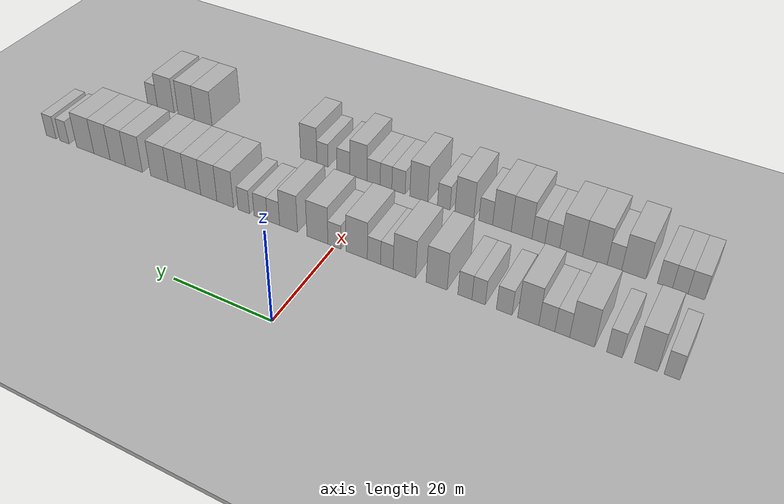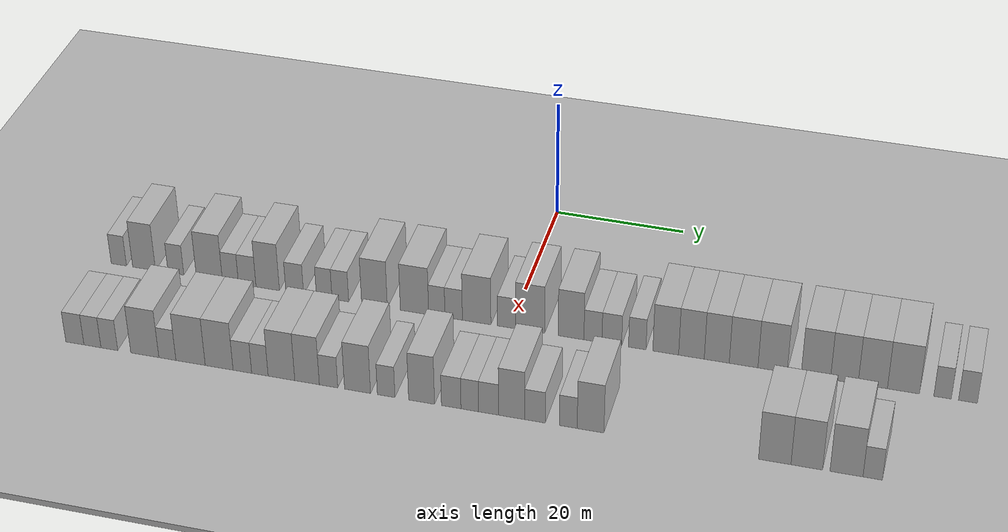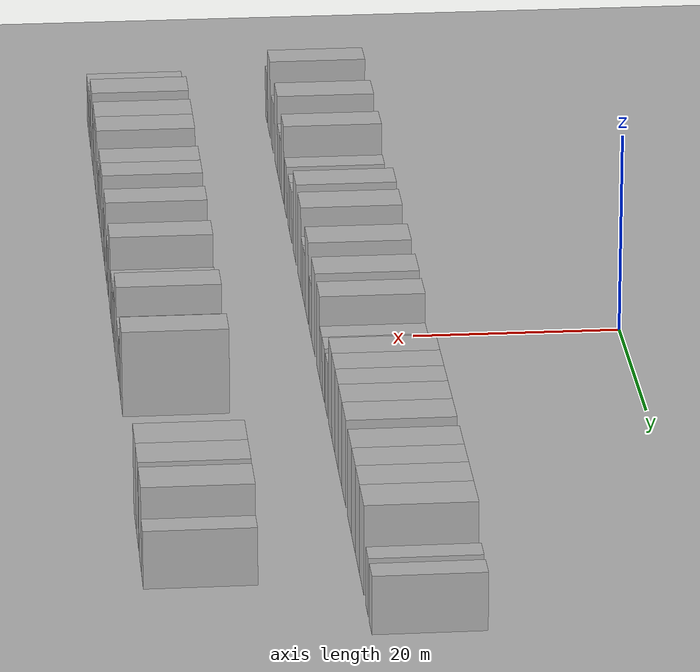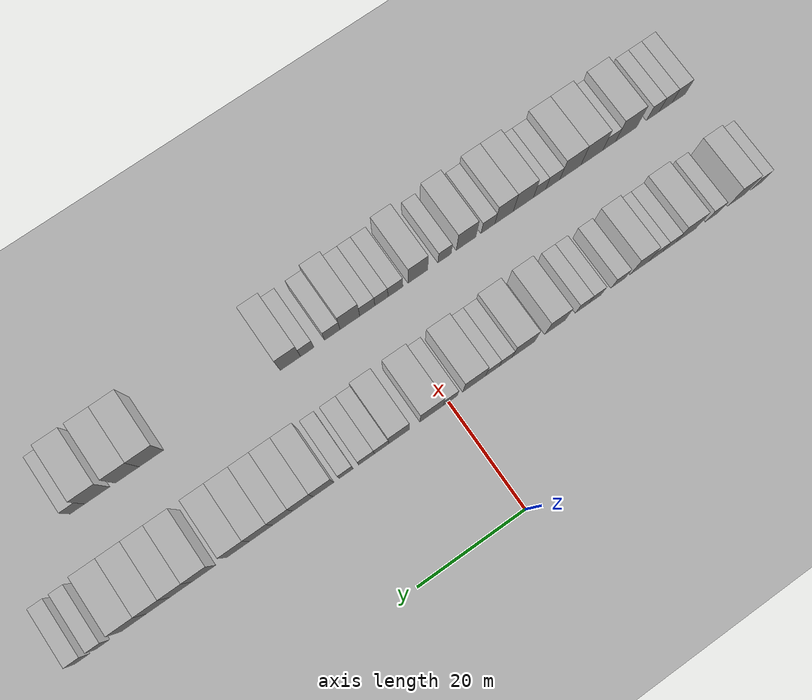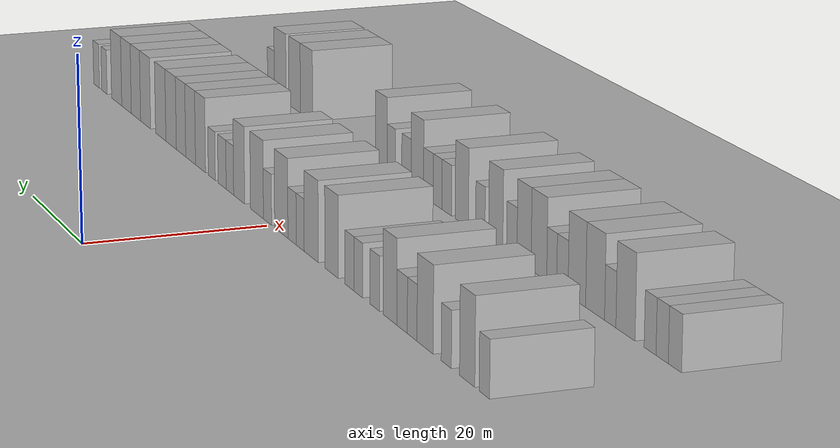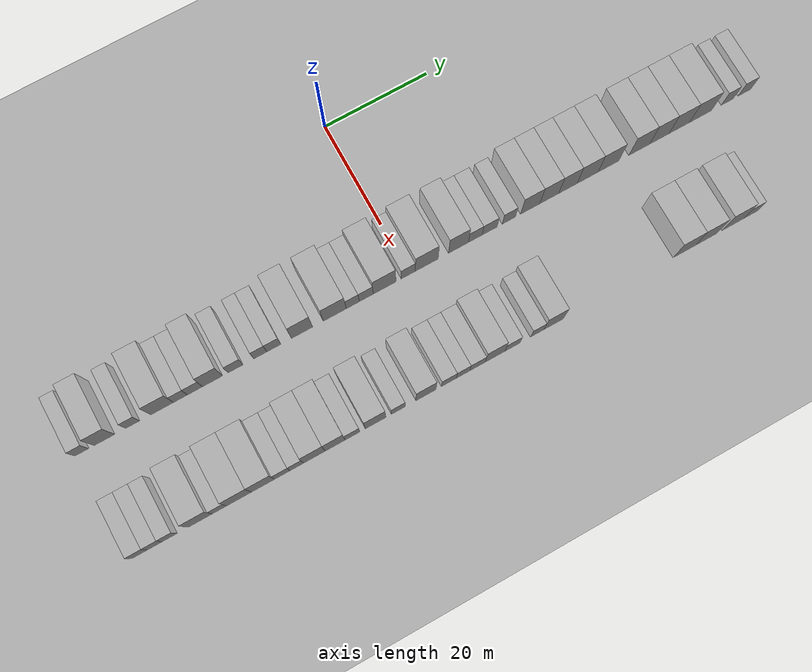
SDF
<sdf version="1.6">
 <world name="default">
  <include><name>ground_plane_1</name><uri>model://HANNAS_ground_plane</uri></include>
  <include>
   <name>ground_plane_2</name>
   <uri>model://HANNAS_ground_plane</uri>
   <pose>100 0 0  0 0 0</pose>
  </include>
  <model name="building_29">
   <static>1</static>
   <pose>25.0000 -60.6753 0 0.000000 0.000000 0.000000</pose>
   <link name="link">
    <pose>0 0 3.00 0 0 0</pose>
    <collision name="collision"><geometry><box><size>10.0000 2.4644 6.0000</size></box></geometry></collision>
    <visual name="visual">
     <cast_shadows>0</cast_shadows>
     <geometry><box><size>10.0000 2.4644 6.0000</size></box></geometry>
     <material>
      <script>
       <uri>model://HANNAS_wall/materials/scripts</uri>
       <uri>model://HANNAS_wall/materials/textures</uri>
       <name>vrc/HANNAS_wall</name>
      </script>
     </material>
    </visual>
   </link>
  </model>
  <model name="building_30">
   <static>1</static>
   <pose>25.0000 -56.6034 0 0.000000 0.000000 0.000000</pose>
   <link name="link">
    <pose>0 0 4.50 0 0 0</pose>
    <collision name="collision"><geometry><box><size>10.0000 3.6793 9.0000</size></box></geometry></collision>
    <visual name="visual">
     <cast_shadows>0</cast_shadows>
     <geometry><box><size>10.0000 3.6793 9.0000</size></box></geometry>
     <material>
      <script>
       <uri>model://HANNAS_wall/materials/scripts</uri>
       <uri>model://HANNAS_wall/materials/textures</uri>
       <name>vrc/HANNAS_wall</name>
      </script>
     </material>
    </visual>
   </link>
  </model>
  <model name="building_31">
   <static>1</static>
   <pose>25.0000 -51.5045 0 0.000000 0.000000 0.000000</pose>
   <link name="link">
    <pose>0 0 3.00 0 0 0</pose>
    <collision name="collision"><geometry><box><size>10.0000 2.5185 6.0000</size></box></geometry></collision>
    <visual name="visual">
     <cast_shadows>0</cast_shadows>
     <geometry><box><size>10.0000 2.5185 6.0000</size></box></geometry>
     <material>
      <script>
       <uri>model://HANNAS_wall/materials/scripts</uri>
       <uri>model://HANNAS_wall/materials/textures</uri>
       <name>vrc/HANNAS_wall</name>
      </script>
     </material>
    </visual>
   </link>
  </model>
  <model name="building_32">
   <static>1</static>
   <pose>25.0000 -46.1726 0 0.000000 0.000000 0.000000</pose>
   <link name="link">
    <pose>0 0 4.50 0 0 0</pose>
    <collision name="collision"><geometry><box><size>10.0000 4.1452 9.0000</size></box></geometry></collision>
    <visual name="visual">
     <cast_shadows>0</cast_shadows>
     <geometry><box><size>10.0000 4.1452 9.0000</size></box></geometry>
     <material>
      <script>
       <uri>model://HANNAS_wall/materials/scripts</uri>
       <uri>model://HANNAS_wall/materials/textures</uri>
       <name>vrc/HANNAS_wall</name>
      </script>
     </material>
    </visual>
   </link>
  </model>
  <model name="building_33">
   <static>1</static>
   <pose>25.0000 -42.8360 0 0.000000 0.000000 0.000000</pose>
   <link name="link">
    <pose>0 0 3.00 0 0 0</pose>
    <collision name="collision"><geometry><box><size>10.0000 2.5281 6.0000</size></box></geometry></collision>
    <visual name="visual">
     <cast_shadows>0</cast_shadows>
     <geometry><box><size>10.0000 2.5281 6.0000</size></box></geometry>
     <material>
      <script>
       <uri>model://HANNAS_wall/materials/scripts</uri>
       <uri>model://HANNAS_wall/materials/textures</uri>
       <name>vrc/HANNAS_wall</name>
      </script>
     </material>
    </visual>
   </link>
  </model>
  <model name="building_34">
   <static>1</static>
   <pose>25.0000 -40.1907 0 0.000000 0.000000 0.000000</pose>
   <link name="link">
    <pose>0 0 3.00 0 0 0</pose>
    <collision name="collision"><geometry><box><size>10.0000 2.7624 6.0000</size></box></geometry></collision>
    <visual name="visual">
     <cast_shadows>0</cast_shadows>
     <geometry><box><size>10.0000 2.7624 6.0000</size></box></geometry>
     <material>
      <script>
       <uri>model://HANNAS_wall/materials/scripts</uri>
       <uri>model://HANNAS_wall/materials/textures</uri>
       <name>vrc/HANNAS_wall</name>
      </script>
     </material>
    </visual>
   </link>
  </model>
  <model name="building_35">
   <static>1</static>
   <pose>25.0000 -36.9668 0 0.000000 0.000000 0.000000</pose>
   <link name="link">
    <pose>0 0 4.50 0 0 0</pose>
    <collision name="collision"><geometry><box><size>10.0000 3.6854 9.0000</size></box></geometry></collision>
    <visual name="visual">
     <cast_shadows>0</cast_shadows>
     <geometry><box><size>10.0000 3.6854 9.0000</size></box></geometry>
     <material>
      <script>
       <uri>model://HANNAS_wall/materials/scripts</uri>
       <uri>model://HANNAS_wall/materials/textures</uri>
       <name>vrc/HANNAS_wall</name>
      </script>
     </material>
    </visual>
   </link>
  </model>
  <model name="building_36">
   <static>1</static>
   <pose>25.0000 -32.7371 0 0.000000 0.000000 0.000000</pose>
   <link name="link">
    <pose>0 0 3.00 0 0 0</pose>
    <collision name="collision"><geometry><box><size>10.0000 2.7739 6.0000</size></box></geometry></collision>
    <visual name="visual">
     <cast_shadows>0</cast_shadows>
     <geometry><box><size>10.0000 2.7739 6.0000</size></box></geometry>
     <material>
      <script>
       <uri>model://HANNAS_wall/materials/scripts</uri>
       <uri>model://HANNAS_wall/materials/textures</uri>
       <name>vrc/HANNAS_wall</name>
      </script>
     </material>
    </visual>
   </link>
  </model>
  <model name="building_37">
   <static>1</static>
   <pose>25.0000 -28.1417 0 0.000000 0.000000 0.000000</pose>
   <link name="link">
    <pose>0 0 3.00 0 0 0</pose>
    <collision name="collision"><geometry><box><size>10.0000 2.4168 6.0000</size></box></geometry></collision>
    <visual name="visual">
     <cast_shadows>0</cast_shadows>
     <geometry><box><size>10.0000 2.4168 6.0000</size></box></geometry>
     <material>
      <script>
       <uri>model://HANNAS_wall/materials/scripts</uri>
       <uri>model://HANNAS_wall/materials/textures</uri>
       <name>vrc/HANNAS_wall</name>
      </script>
     </material>
    </visual>
   </link>
  </model>
  <model name="building_38">
   <static>1</static>
   <pose>25.0000 -25.6398 0 0.000000 0.000000 0.000000</pose>
   <link name="link">
    <pose>0 0 3.00 0 0 0</pose>
    <collision name="collision"><geometry><box><size>10.0000 2.5871 6.0000</size></box></geometry></collision>
    <visual name="visual">
     <cast_shadows>0</cast_shadows>
     <geometry><box><size>10.0000 2.5871 6.0000</size></box></geometry>
     <material>
      <script>
       <uri>model://HANNAS_wall/materials/scripts</uri>
       <uri>model://HANNAS_wall/materials/textures</uri>
       <name>vrc/HANNAS_wall</name>
      </script>
     </material>
    </visual>
   </link>
  </model>
  <model name="building_39">
   <static>1</static>
   <pose>25.0000 -20.3670 0 0.000000 0.000000 0.000000</pose>
   <link name="link">
    <pose>0 0 4.50 0 0 0</pose>
    <collision name="collision"><geometry><box><size>10.0000 3.9584 9.0000</size></box></geometry></collision>
    <visual name="visual">
     <cast_shadows>0</cast_shadows>
     <geometry><box><size>10.0000 3.9584 9.0000</size></box></geometry>
     <material>
      <script>
       <uri>model://HANNAS_wall/materials/scripts</uri>
       <uri>model://HANNAS_wall/materials/textures</uri>
       <name>vrc/HANNAS_wall</name>
      </script>
     </material>
    </visual>
   </link>
  </model>
  <model name="building_40">
   <static>1</static>
   <pose>25.0000 -14.2242 0 0.000000 0.000000 0.000000</pose>
   <link name="link">
    <pose>0 0 4.50 0 0 0</pose>
    <collision name="collision"><geometry><box><size>10.0000 4.3272 9.0000</size></box></geometry></collision>
    <visual name="visual">
     <cast_shadows>0</cast_shadows>
     <geometry><box><size>10.0000 4.3272 9.0000</size></box></geometry>
     <material>
      <script>
       <uri>model://HANNAS_wall/materials/scripts</uri>
       <uri>model://HANNAS_wall/materials/textures</uri>
       <name>vrc/HANNAS_wall</name>
      </script>
     </material>
    </visual>
   </link>
  </model>
  <model name="building_41">
   <static>1</static>
   <pose>25.0000 -10.8219 0 0.000000 0.000000 0.000000</pose>
   <link name="link">
    <pose>0 0 3.00 0 0 0</pose>
    <collision name="collision"><geometry><box><size>10.0000 2.4773 6.0000</size></box></geometry></collision>
    <visual name="visual">
     <cast_shadows>0</cast_shadows>
     <geometry><box><size>10.0000 2.4773 6.0000</size></box></geometry>
     <material>
      <script>
       <uri>model://HANNAS_wall/materials/scripts</uri>
       <uri>model://HANNAS_wall/materials/textures</uri>
       <name>vrc/HANNAS_wall</name>
      </script>
     </material>
    </visual>
   </link>
  </model>
  <model name="building_42">
   <static>1</static>
   <pose>25.0000 -8.2624 0 0.000000 0.000000 0.000000</pose>
   <link name="link">
    <pose>0 0 3.00 0 0 0</pose>
    <collision name="collision"><geometry><box><size>10.0000 2.6418 6.0000</size></box></geometry></collision>
    <visual name="visual">
     <cast_shadows>0</cast_shadows>
     <geometry><box><size>10.0000 2.6418 6.0000</size></box></geometry>
     <material>
      <script>
       <uri>model://HANNAS_wall/materials/scripts</uri>
       <uri>model://HANNAS_wall/materials/textures</uri>
       <name>vrc/HANNAS_wall</name>
      </script>
     </material>
    </visual>
   </link>
  </model>
  <model name="building_43">
   <static>1</static>
   <pose>25.0000 -4.7868 0 0.000000 0.000000 0.000000</pose>
   <link name="link">
    <pose>0 0 4.50 0 0 0</pose>
    <collision name="collision"><geometry><box><size>10.0000 4.3095 9.0000</size></box></geometry></collision>
    <visual name="visual">
     <cast_shadows>0</cast_shadows>
     <geometry><box><size>10.0000 4.3095 9.0000</size></box></geometry>
     <material>
      <script>
       <uri>model://HANNAS_wall/materials/scripts</uri>
       <uri>model://HANNAS_wall/materials/textures</uri>
       <name>vrc/HANNAS_wall</name>
      </script>
     </material>
    </visual>
   </link>
  </model>
  <model name="building_44">
   <static>1</static>
   <pose>25.0000 -0.2851 0 0.000000 0.000000 0.000000</pose>
   <link name="link">
    <pose>0 0 3.00 0 0 0</pose>
    <collision name="collision"><geometry><box><size>10.0000 2.6940 6.0000</size></box></geometry></collision>
    <visual name="visual">
     <cast_shadows>0</cast_shadows>
     <geometry><box><size>10.0000 2.6940 6.0000</size></box></geometry>
     <material>
      <script>
       <uri>model://HANNAS_wall/materials/scripts</uri>
       <uri>model://HANNAS_wall/materials/textures</uri>
       <name>vrc/HANNAS_wall</name>
      </script>
     </material>
    </visual>
   </link>
  </model>
  <model name="building_45">
   <static>1</static>
   <pose>25.0000 3.2484 0 0.000000 0.000000 0.000000</pose>
   <link name="link">
    <pose>0 0 4.50 0 0 0</pose>
    <collision name="collision"><geometry><box><size>10.0000 4.3729 9.0000</size></box></geometry></collision>
    <visual name="visual">
     <cast_shadows>0</cast_shadows>
     <geometry><box><size>10.0000 4.3729 9.0000</size></box></geometry>
     <material>
      <script>
       <uri>model://HANNAS_wall/materials/scripts</uri>
       <uri>model://HANNAS_wall/materials/textures</uri>
       <name>vrc/HANNAS_wall</name>
      </script>
     </material>
    </visual>
   </link>
  </model>
  <model name="building_46">
   <static>1</static>
   <pose>25.0000 9.3493 0 0.000000 0.000000 0.000000</pose>
   <link name="link">
    <pose>0 0 4.50 0 0 0</pose>
    <collision name="collision"><geometry><box><size>10.0000 3.8289 9.0000</size></box></geometry></collision>
    <visual name="visual">
     <cast_shadows>0</cast_shadows>
     <geometry><box><size>10.0000 3.8289 9.0000</size></box></geometry>
     <material>
      <script>
       <uri>model://HANNAS_wall/materials/scripts</uri>
       <uri>model://HANNAS_wall/materials/textures</uri>
       <name>vrc/HANNAS_wall</name>
      </script>
     </material>
    </visual>
   </link>
  </model>
  <model name="building_47">
   <static>1</static>
   <pose>25.0000 12.5972 0 0.000000 0.000000 0.000000</pose>
   <link name="link">
    <pose>0 0 3.00 0 0 0</pose>
    <collision name="collision"><geometry><box><size>10.0000 2.6668 6.0000</size></box></geometry></collision>
    <visual name="visual">
     <cast_shadows>0</cast_shadows>
     <geometry><box><size>10.0000 2.6668 6.0000</size></box></geometry>
     <material>
      <script>
       <uri>model://HANNAS_wall/materials/scripts</uri>
       <uri>model://HANNAS_wall/materials/textures</uri>
       <name>vrc/HANNAS_wall</name>
      </script>
     </material>
    </visual>
   </link>
  </model>
  <model name="building_48">
   <static>1</static>
   <pose>25.0000 15.3865 0 0.000000 0.000000 0.000000</pose>
   <link name="link">
    <pose>0 0 3.00 0 0 0</pose>
    <collision name="collision"><geometry><box><size>10.0000 2.9118 6.0000</size></box></geometry></collision>
    <visual name="visual">
     <cast_shadows>0</cast_shadows>
     <geometry><box><size>10.0000 2.9118 6.0000</size></box></geometry>
     <material>
      <script>
       <uri>model://HANNAS_wall/materials/scripts</uri>
       <uri>model://HANNAS_wall/materials/textures</uri>
       <name>vrc/HANNAS_wall</name>
      </script>
     </material>
    </visual>
   </link>
  </model>
  <model name="building_49">
   <static>1</static>
   <pose>25.0000 19.1278 0 0.000000 0.000000 0.000000</pose>
   <link name="link">
    <pose>0 0 3.00 0 0 0</pose>
    <collision name="collision"><geometry><box><size>10.0000 2.5707 6.0000</size></box></geometry></collision>
    <visual name="visual">
     <cast_shadows>0</cast_shadows>
     <geometry><box><size>10.0000 2.5707 6.0000</size></box></geometry>
     <material>
      <script>
       <uri>model://HANNAS_wall/materials/scripts</uri>
       <uri>model://HANNAS_wall/materials/textures</uri>
       <name>vrc/HANNAS_wall</name>
      </script>
     </material>
    </visual>
   </link>
  </model>
  <model name="building_50">
   <static>1</static>
   <pose>25.0000 23.2987 0 0.000000 0.000000 0.000000</pose>
   <link name="link">
    <pose>0 0 4.50 0 0 0</pose>
    <collision name="collision"><geometry><box><size>10.0000 3.7711 9.0000</size></box></geometry></collision>
    <visual name="visual">
     <cast_shadows>0</cast_shadows>
     <geometry><box><size>10.0000 3.7711 9.0000</size></box></geometry>
     <material>
      <script>
       <uri>model://HANNAS_wall/materials/scripts</uri>
       <uri>model://HANNAS_wall/materials/textures</uri>
       <name>vrc/HANNAS_wall</name>
      </script>
     </material>
    </visual>
   </link>
  </model>
  <model name="building_51">
   <static>1</static>
   <pose>25.0000 27.0453 0 0.000000 0.000000 0.000000</pose>
   <link name="link">
    <pose>0 0 4.50 0 0 0</pose>
    <collision name="collision"><geometry><box><size>10.0000 3.7221 9.0000</size></box></geometry></collision>
    <visual name="visual">
     <cast_shadows>0</cast_shadows>
     <geometry><box><size>10.0000 3.7221 9.0000</size></box></geometry>
     <material>
      <script>
       <uri>model://HANNAS_wall/materials/scripts</uri>
       <uri>model://HANNAS_wall/materials/textures</uri>
       <name>vrc/HANNAS_wall</name>
      </script>
     </material>
    </visual>
   </link>
  </model>
  <model name="building_52">
   <static>1</static>
   <pose>25.0000 30.7157 0 0.000000 0.000000 0.000000</pose>
   <link name="link">
    <pose>0 0 4.50 0 0 0</pose>
    <collision name="collision"><geometry><box><size>10.0000 3.6187 9.0000</size></box></geometry></collision>
    <visual name="visual">
     <cast_shadows>0</cast_shadows>
     <geometry><box><size>10.0000 3.6187 9.0000</size></box></geometry>
     <material>
      <script>
       <uri>model://HANNAS_wall/materials/scripts</uri>
       <uri>model://HANNAS_wall/materials/textures</uri>
       <name>vrc/HANNAS_wall</name>
      </script>
     </material>
    </visual>
   </link>
  </model>
  <model name="building_53">
   <static>1</static>
   <pose>25.0000 34.5919 0 0.000000 0.000000 0.000000</pose>
   <link name="link">
    <pose>0 0 4.50 0 0 0</pose>
    <collision name="collision"><geometry><box><size>10.0000 4.1337 9.0000</size></box></geometry></collision>
    <visual name="visual">
     <cast_shadows>0</cast_shadows>
     <geometry><box><size>10.0000 4.1337 9.0000</size></box></geometry>
     <material>
      <script>
       <uri>model://HANNAS_wall/materials/scripts</uri>
       <uri>model://HANNAS_wall/materials/textures</uri>
       <name>vrc/HANNAS_wall</name>
      </script>
     </material>
    </visual>
   </link>
  </model>
  <model name="building_54">
   <static>1</static>
   <pose>25.0000 38.7498 0 0.000000 0.000000 0.000000</pose>
   <link name="link">
    <pose>0 0 4.50 0 0 0</pose>
    <collision name="collision"><geometry><box><size>10.0000 4.1821 9.0000</size></box></geometry></collision>
    <visual name="visual">
     <cast_shadows>0</cast_shadows>
     <geometry><box><size>10.0000 4.1821 9.0000</size></box></geometry>
     <material>
      <script>
       <uri>model://HANNAS_wall/materials/scripts</uri>
       <uri>model://HANNAS_wall/materials/textures</uri>
       <name>vrc/HANNAS_wall</name>
      </script>
     </material>
    </visual>
   </link>
  </model>
  <model name="building_55">
   <static>1</static>
   <pose>25.0000 44.9251 0 0.000000 0.000000 0.000000</pose>
   <link name="link">
    <pose>0 0 4.50 0 0 0</pose>
    <collision name="collision"><geometry><box><size>10.0000 4.1687 9.0000</size></box></geometry></collision>
    <visual name="visual">
     <cast_shadows>0</cast_shadows>
     <geometry><box><size>10.0000 4.1687 9.0000</size></box></geometry>
     <material>
      <script>
       <uri>model://HANNAS_wall/materials/scripts</uri>
       <uri>model://HANNAS_wall/materials/textures</uri>
       <name>vrc/HANNAS_wall</name>
      </script>
     </material>
    </visual>
   </link>
  </model>
  <model name="building_56">
   <static>1</static>
   <pose>25.0000 48.9636 0 0.000000 0.000000 0.000000</pose>
   <link name="link">
    <pose>0 0 4.50 0 0 0</pose>
    <collision name="collision"><geometry><box><size>10.0000 3.9081 9.0000</size></box></geometry></collision>
    <visual name="visual">
     <cast_shadows>0</cast_shadows>
     <geometry><box><size>10.0000 3.9081 9.0000</size></box></geometry>
     <material>
      <script>
       <uri>model://HANNAS_wall/materials/scripts</uri>
       <uri>model://HANNAS_wall/materials/textures</uri>
       <name>vrc/HANNAS_wall</name>
      </script>
     </material>
    </visual>
   </link>
  </model>
  <model name="building_57">
   <static>1</static>
   <pose>25.0000 52.9818 0 0.000000 0.000000 0.000000</pose>
   <link name="link">
    <pose>0 0 4.50 0 0 0</pose>
    <collision name="collision"><geometry><box><size>10.0000 4.1284 9.0000</size></box></geometry></collision>
    <visual name="visual">
     <cast_shadows>0</cast_shadows>
     <geometry><box><size>10.0000 4.1284 9.0000</size></box></geometry>
     <material>
      <script>
       <uri>model://HANNAS_wall/materials/scripts</uri>
       <uri>model://HANNAS_wall/materials/textures</uri>
       <name>vrc/HANNAS_wall</name>
      </script>
     </material>
    </visual>
   </link>
  </model>
  <model name="building_58">
   <static>1</static>
   <pose>25.0000 57.2910 0 0.000000 0.000000 0.000000</pose>
   <link name="link">
    <pose>0 0 4.50 0 0 0</pose>
    <collision name="collision"><geometry><box><size>10.0000 4.4899 9.0000</size></box></geometry></collision>
    <visual name="visual">
     <cast_shadows>0</cast_shadows>
     <geometry><box><size>10.0000 4.4899 9.0000</size></box></geometry>
     <material>
      <script>
       <uri>model://HANNAS_wall/materials/scripts</uri>
       <uri>model://HANNAS_wall/materials/textures</uri>
       <name>vrc/HANNAS_wall</name>
      </script>
     </material>
    </visual>
   </link>
  </model>
  <model name="building_59">
   <static>1</static>
   <pose>25.0000 62.7533 0 0.000000 0.000000 0.000000</pose>
   <link name="link">
    <pose>0 0 3.00 0 0 0</pose>
    <collision name="collision"><geometry><box><size>10.0000 2.4347 6.0000</size></box></geometry></collision>
    <visual name="visual">
     <cast_shadows>0</cast_shadows>
     <geometry><box><size>10.0000 2.4347 6.0000</size></box></geometry>
     <material>
      <script>
       <uri>model://HANNAS_wall/materials/scripts</uri>
       <uri>model://HANNAS_wall/materials/textures</uri>
       <name>vrc/HANNAS_wall</name>
      </script>
     </material>
    </visual>
   </link>
  </model>
  <model name="building_60">
   <static>1</static>
   <pose>25.0000 66.2779 0 0.000000 0.000000 0.000000</pose>
   <link name="link">
    <pose>0 0 3.00 0 0 0</pose>
    <collision name="collision"><geometry><box><size>10.0000 2.6145 6.0000</size></box></geometry></collision>
    <visual name="visual">
     <cast_shadows>0</cast_shadows>
     <geometry><box><size>10.0000 2.6145 6.0000</size></box></geometry>
     <material>
      <script>
       <uri>model://HANNAS_wall/materials/scripts</uri>
       <uri>model://HANNAS_wall/materials/textures</uri>
       <name>vrc/HANNAS_wall</name>
      </script>
     </material>
    </visual>
   </link>
  </model>
  <model name="building_122">
   <static>1</static>
   <pose>44.0000 -59.5845 0 0.000000 0.000000 0.000000</pose>
   <link name="link">
    <pose>0 0 3.00 0 0 0</pose>
    <collision name="collision"><geometry><box><size>10.0000 2.8059 6.0000</size></box></geometry></collision>
    <visual name="visual">
     <cast_shadows>0</cast_shadows>
     <geometry><box><size>10.0000 2.8059 6.0000</size></box></geometry>
     <material>
      <script>
       <uri>model://HANNAS_wall/materials/scripts</uri>
       <uri>model://HANNAS_wall/materials/textures</uri>
       <name>vrc/HANNAS_wall</name>
      </script>
     </material>
    </visual>
   </link>
  </model>
  <model name="building_123">
   <static>1</static>
   <pose>44.0000 -56.8671 0 0.000000 0.000000 0.000000</pose>
   <link name="link">
    <pose>0 0 3.00 0 0 0</pose>
    <collision name="collision"><geometry><box><size>10.0000 2.6288 6.0000</size></box></geometry></collision>
    <visual name="visual">
     <cast_shadows>0</cast_shadows>
     <geometry><box><size>10.0000 2.6288 6.0000</size></box></geometry>
     <material>
      <script>
       <uri>model://HANNAS_wall/materials/scripts</uri>
       <uri>model://HANNAS_wall/materials/textures</uri>
       <name>vrc/HANNAS_wall</name>
      </script>
     </material>
    </visual>
   </link>
  </model>
  <model name="building_124">
   <static>1</static>
   <pose>44.0000 -54.2617 0 0.000000 0.000000 0.000000</pose>
   <link name="link">
    <pose>0 0 3.00 0 0 0</pose>
    <collision name="collision"><geometry><box><size>10.0000 2.5822 6.0000</size></box></geometry></collision>
    <visual name="visual">
     <cast_shadows>0</cast_shadows>
     <geometry><box><size>10.0000 2.5822 6.0000</size></box></geometry>
     <material>
      <script>
       <uri>model://HANNAS_wall/materials/scripts</uri>
       <uri>model://HANNAS_wall/materials/textures</uri>
       <name>vrc/HANNAS_wall</name>
      </script>
     </material>
    </visual>
   </link>
  </model>
  <model name="building_125">
   <static>1</static>
   <pose>44.0000 -48.8210 0 0.000000 0.000000 0.000000</pose>
   <link name="link">
    <pose>0 0 4.50 0 0 0</pose>
    <collision name="collision"><geometry><box><size>10.0000 4.2992 9.0000</size></box></geometry></collision>
    <visual name="visual">
     <cast_shadows>0</cast_shadows>
     <geometry><box><size>10.0000 4.2992 9.0000</size></box></geometry>
     <material>
      <script>
       <uri>model://HANNAS_wall/materials/scripts</uri>
       <uri>model://HANNAS_wall/materials/textures</uri>
       <name>vrc/HANNAS_wall</name>
      </script>
     </material>
    </visual>
   </link>
  </model>
  <model name="building_126">
   <static>1</static>
   <pose>44.0000 -45.3717 0 0.000000 0.000000 0.000000</pose>
   <link name="link">
    <pose>0 0 3.00 0 0 0</pose>
    <collision name="collision"><geometry><box><size>10.0000 2.5995 6.0000</size></box></geometry></collision>
    <visual name="visual">
     <cast_shadows>0</cast_shadows>
     <geometry><box><size>10.0000 2.5995 6.0000</size></box></geometry>
     <material>
      <script>
       <uri>model://HANNAS_wall/materials/scripts</uri>
       <uri>model://HANNAS_wall/materials/textures</uri>
       <name>vrc/HANNAS_wall</name>
      </script>
     </material>
    </visual>
   </link>
  </model>
  <model name="building_127">
   <static>1</static>
   <pose>44.0000 -41.8496 0 0.000000 0.000000 0.000000</pose>
   <link name="link">
    <pose>0 0 4.50 0 0 0</pose>
    <collision name="collision"><geometry><box><size>10.0000 4.4447 9.0000</size></box></geometry></collision>
    <visual name="visual">
     <cast_shadows>0</cast_shadows>
     <geometry><box><size>10.0000 4.4447 9.0000</size></box></geometry>
     <material>
      <script>
       <uri>model://HANNAS_wall/materials/scripts</uri>
       <uri>model://HANNAS_wall/materials/textures</uri>
       <name>vrc/HANNAS_wall</name>
      </script>
     </material>
    </visual>
   </link>
  </model>
  <model name="building_128">
   <static>1</static>
   <pose>44.0000 -37.5254 0 0.000000 0.000000 0.000000</pose>
   <link name="link">
    <pose>0 0 4.50 0 0 0</pose>
    <collision name="collision"><geometry><box><size>10.0000 4.2037 9.0000</size></box></geometry></collision>
    <visual name="visual">
     <cast_shadows>0</cast_shadows>
     <geometry><box><size>10.0000 4.2037 9.0000</size></box></geometry>
     <material>
      <script>
       <uri>model://HANNAS_wall/materials/scripts</uri>
       <uri>model://HANNAS_wall/materials/textures</uri>
       <name>vrc/HANNAS_wall</name>
      </script>
     </material>
    </visual>
   </link>
  </model>
  <model name="building_129">
   <static>1</static>
   <pose>44.0000 -34.0265 0 0.000000 0.000000 0.000000</pose>
   <link name="link">
    <pose>0 0 3.00 0 0 0</pose>
    <collision name="collision"><geometry><box><size>10.0000 2.7940 6.0000</size></box></geometry></collision>
    <visual name="visual">
     <cast_shadows>0</cast_shadows>
     <geometry><box><size>10.0000 2.7940 6.0000</size></box></geometry>
     <material>
      <script>
       <uri>model://HANNAS_wall/materials/scripts</uri>
       <uri>model://HANNAS_wall/materials/textures</uri>
       <name>vrc/HANNAS_wall</name>
      </script>
     </material>
    </visual>
   </link>
  </model>
  <model name="building_130">
   <static>1</static>
   <pose>44.0000 -31.3996 0 0.000000 0.000000 0.000000</pose>
   <link name="link">
    <pose>0 0 3.00 0 0 0</pose>
    <collision name="collision"><geometry><box><size>10.0000 2.4597 6.0000</size></box></geometry></collision>
    <visual name="visual">
     <cast_shadows>0</cast_shadows>
     <geometry><box><size>10.0000 2.4597 6.0000</size></box></geometry>
     <material>
      <script>
       <uri>model://HANNAS_wall/materials/scripts</uri>
       <uri>model://HANNAS_wall/materials/textures</uri>
       <name>vrc/HANNAS_wall</name>
      </script>
     </material>
    </visual>
   </link>
  </model>
  <model name="building_131">
   <static>1</static>
   <pose>44.0000 -28.1816 0 0.000000 0.000000 0.000000</pose>
   <link name="link">
    <pose>0 0 4.50 0 0 0</pose>
    <collision name="collision"><geometry><box><size>10.0000 3.9764 9.0000</size></box></geometry></collision>
    <visual name="visual">
     <cast_shadows>0</cast_shadows>
     <geometry><box><size>10.0000 3.9764 9.0000</size></box></geometry>
     <material>
      <script>
       <uri>model://HANNAS_wall/materials/scripts</uri>
       <uri>model://HANNAS_wall/materials/textures</uri>
       <name>vrc/HANNAS_wall</name>
      </script>
     </material>
    </visual>
   </link>
  </model>
  <model name="building_132">
   <static>1</static>
   <pose>44.0000 -24.3692 0 0.000000 0.000000 0.000000</pose>
   <link name="link">
    <pose>0 0 4.50 0 0 0</pose>
    <collision name="collision"><geometry><box><size>10.0000 3.6483 9.0000</size></box></geometry></collision>
    <visual name="visual">
     <cast_shadows>0</cast_shadows>
     <geometry><box><size>10.0000 3.6483 9.0000</size></box></geometry>
     <material>
      <script>
       <uri>model://HANNAS_wall/materials/scripts</uri>
       <uri>model://HANNAS_wall/materials/textures</uri>
       <name>vrc/HANNAS_wall</name>
      </script>
     </material>
    </visual>
   </link>
  </model>
  <model name="building_133">
   <static>1</static>
   <pose>44.0000 -21.1826 0 0.000000 0.000000 0.000000</pose>
   <link name="link">
    <pose>0 0 3.00 0 0 0</pose>
    <collision name="collision"><geometry><box><size>10.0000 2.7250 6.0000</size></box></geometry></collision>
    <visual name="visual">
     <cast_shadows>0</cast_shadows>
     <geometry><box><size>10.0000 2.7250 6.0000</size></box></geometry>
     <material>
      <script>
       <uri>model://HANNAS_wall/materials/scripts</uri>
       <uri>model://HANNAS_wall/materials/textures</uri>
       <name>vrc/HANNAS_wall</name>
      </script>
     </material>
    </visual>
   </link>
  </model>
  <model name="building_134">
   <static>1</static>
   <pose>44.0000 -16.9088 0 0.000000 0.000000 0.000000</pose>
   <link name="link">
    <pose>0 0 4.50 0 0 0</pose>
    <collision name="collision"><geometry><box><size>10.0000 3.8226 9.0000</size></box></geometry></collision>
    <visual name="visual">
     <cast_shadows>0</cast_shadows>
     <geometry><box><size>10.0000 3.8226 9.0000</size></box></geometry>
     <material>
      <script>
       <uri>model://HANNAS_wall/materials/scripts</uri>
       <uri>model://HANNAS_wall/materials/textures</uri>
       <name>vrc/HANNAS_wall</name>
      </script>
     </material>
    </visual>
   </link>
  </model>
  <model name="building_135">
   <static>1</static>
   <pose>44.0000 -12.7124 0 0.000000 0.000000 0.000000</pose>
   <link name="link">
    <pose>0 0 3.00 0 0 0</pose>
    <collision name="collision"><geometry><box><size>10.0000 2.5702 6.0000</size></box></geometry></collision>
    <visual name="visual">
     <cast_shadows>0</cast_shadows>
     <geometry><box><size>10.0000 2.5702 6.0000</size></box></geometry>
     <material>
      <script>
       <uri>model://HANNAS_wall/materials/scripts</uri>
       <uri>model://HANNAS_wall/materials/textures</uri>
       <name>vrc/HANNAS_wall</name>
      </script>
     </material>
    </visual>
   </link>
  </model>
  <model name="building_136">
   <static>1</static>
   <pose>44.0000 -7.5453 0 0.000000 0.000000 0.000000</pose>
   <link name="link">
    <pose>0 0 4.50 0 0 0</pose>
    <collision name="collision"><geometry><box><size>10.0000 3.7639 9.0000</size></box></geometry></collision>
    <visual name="visual">
     <cast_shadows>0</cast_shadows>
     <geometry><box><size>10.0000 3.7639 9.0000</size></box></geometry>
     <material>
      <script>
       <uri>model://HANNAS_wall/materials/scripts</uri>
       <uri>model://HANNAS_wall/materials/textures</uri>
       <name>vrc/HANNAS_wall</name>
      </script>
     </material>
    </visual>
   </link>
  </model>
  <model name="building_137">
   <static>1</static>
   <pose>44.0000 -3.2504 0 0.000000 0.000000 0.000000</pose>
   <link name="link">
    <pose>0 0 3.00 0 0 0</pose>
    <collision name="collision"><geometry><box><size>10.0000 2.8259 6.0000</size></box></geometry></collision>
    <visual name="visual">
     <cast_shadows>0</cast_shadows>
     <geometry><box><size>10.0000 2.8259 6.0000</size></box></geometry>
     <material>
      <script>
       <uri>model://HANNAS_wall/materials/scripts</uri>
       <uri>model://HANNAS_wall/materials/textures</uri>
       <name>vrc/HANNAS_wall</name>
      </script>
     </material>
    </visual>
   </link>
  </model>
  <model name="building_138">
   <static>1</static>
   <pose>44.0000 -0.5750 0 0.000000 0.000000 0.000000</pose>
   <link name="link">
    <pose>0 0 3.00 0 0 0</pose>
    <collision name="collision"><geometry><box><size>10.0000 2.5250 6.0000</size></box></geometry></collision>
    <visual name="visual">
     <cast_shadows>0</cast_shadows>
     <geometry><box><size>10.0000 2.5250 6.0000</size></box></geometry>
     <material>
      <script>
       <uri>model://HANNAS_wall/materials/scripts</uri>
       <uri>model://HANNAS_wall/materials/textures</uri>
       <name>vrc/HANNAS_wall</name>
      </script>
     </material>
    </visual>
   </link>
  </model>
  <model name="building_139">
   <static>1</static>
   <pose>44.0000 2.1249 0 0.000000 0.000000 0.000000</pose>
   <link name="link">
    <pose>0 0 3.00 0 0 0</pose>
    <collision name="collision"><geometry><box><size>10.0000 2.8748 6.0000</size></box></geometry></collision>
    <visual name="visual">
     <cast_shadows>0</cast_shadows>
     <geometry><box><size>10.0000 2.8748 6.0000</size></box></geometry>
     <material>
      <script>
       <uri>model://HANNAS_wall/materials/scripts</uri>
       <uri>model://HANNAS_wall/materials/textures</uri>
       <name>vrc/HANNAS_wall</name>
      </script>
     </material>
    </visual>
   </link>
  </model>
  <model name="building_140">
   <static>1</static>
   <pose>44.0000 5.4307 0 0.000000 0.000000 0.000000</pose>
   <link name="link">
    <pose>0 0 4.50 0 0 0</pose>
    <collision name="collision"><geometry><box><size>10.0000 3.7366 9.0000</size></box></geometry></collision>
    <visual name="visual">
     <cast_shadows>0</cast_shadows>
     <geometry><box><size>10.0000 3.7366 9.0000</size></box></geometry>
     <material>
      <script>
       <uri>model://HANNAS_wall/materials/scripts</uri>
       <uri>model://HANNAS_wall/materials/textures</uri>
       <name>vrc/HANNAS_wall</name>
      </script>
     </material>
    </visual>
   </link>
  </model>
  <model name="building_141">
   <static>1</static>
   <pose>44.0000 8.7635 0 0.000000 0.000000 0.000000</pose>
   <link name="link">
    <pose>0 0 3.00 0 0 0</pose>
    <collision name="collision"><geometry><box><size>10.0000 2.9290 6.0000</size></box></geometry></collision>
    <visual name="visual">
     <cast_shadows>0</cast_shadows>
     <geometry><box><size>10.0000 2.9290 6.0000</size></box></geometry>
     <material>
      <script>
       <uri>model://HANNAS_wall/materials/scripts</uri>
       <uri>model://HANNAS_wall/materials/textures</uri>
       <name>vrc/HANNAS_wall</name>
      </script>
     </material>
    </visual>
   </link>
  </model>
  <model name="building_142">
   <static>1</static>
   <pose>44.0000 13.4836 0 0.000000 0.000000 0.000000</pose>
   <link name="link">
    <pose>0 0 3.00 0 0 0</pose>
    <collision name="collision"><geometry><box><size>10.0000 2.5113 6.0000</size></box></geometry></collision>
    <visual name="visual">
     <cast_shadows>0</cast_shadows>
     <geometry><box><size>10.0000 2.5113 6.0000</size></box></geometry>
     <material>
      <script>
       <uri>model://HANNAS_wall/materials/scripts</uri>
       <uri>model://HANNAS_wall/materials/textures</uri>
       <name>vrc/HANNAS_wall</name>
      </script>
     </material>
    </visual>
   </link>
  </model>
  <model name="building_143">
   <static>1</static>
   <pose>44.0000 16.6275 0 0.000000 0.000000 0.000000</pose>
   <link name="link">
    <pose>0 0 4.50 0 0 0</pose>
    <collision name="collision"><geometry><box><size>10.0000 3.7764 9.0000</size></box></geometry></collision>
    <visual name="visual">
     <cast_shadows>0</cast_shadows>
     <geometry><box><size>10.0000 3.7764 9.0000</size></box></geometry>
     <material>
      <script>
       <uri>model://HANNAS_wall/materials/scripts</uri>
       <uri>model://HANNAS_wall/materials/textures</uri>
       <name>vrc/HANNAS_wall</name>
      </script>
     </material>
    </visual>
   </link>
  </model>
  <model name="building_144">
   <static>1</static>
   <pose>44.0000 42.1673 0 0.000000 0.000000 0.000000</pose>
   <link name="link">
    <pose>0 0 4.50 0 0 0</pose>
    <collision name="collision"><geometry><box><size>10.0000 4.4344 9.0000</size></box></geometry></collision>
    <visual name="visual">
     <cast_shadows>0</cast_shadows>
     <geometry><box><size>10.0000 4.4344 9.0000</size></box></geometry>
     <material>
      <script>
       <uri>model://HANNAS_wall/materials/scripts</uri>
       <uri>model://HANNAS_wall/materials/textures</uri>
       <name>vrc/HANNAS_wall</name>
      </script>
     </material>
    </visual>
   </link>
  </model>
  <model name="building_145">
   <static>1</static>
   <pose>44.0000 46.5251 0 0.000000 0.000000 0.000000</pose>
   <link name="link">
    <pose>0 0 4.50 0 0 0</pose>
    <collision name="collision"><geometry><box><size>10.0000 4.2812 9.0000</size></box></geometry></collision>
    <visual name="visual">
     <cast_shadows>0</cast_shadows>
     <geometry><box><size>10.0000 4.2812 9.0000</size></box></geometry>
     <material>
      <script>
       <uri>model://HANNAS_wall/materials/scripts</uri>
       <uri>model://HANNAS_wall/materials/textures</uri>
       <name>vrc/HANNAS_wall</name>
      </script>
     </material>
    </visual>
   </link>
  </model>
  <model name="building_146">
   <static>1</static>
   <pose>44.0000 51.8894 0 0.000000 0.000000 0.000000</pose>
   <link name="link">
    <pose>0 0 4.50 0 0 0</pose>
    <collision name="collision"><geometry><box><size>10.0000 4.4474 9.0000</size></box></geometry></collision>
    <visual name="visual">
     <cast_shadows>0</cast_shadows>
     <geometry><box><size>10.0000 4.4474 9.0000</size></box></geometry>
     <material>
      <script>
       <uri>model://HANNAS_wall/materials/scripts</uri>
       <uri>model://HANNAS_wall/materials/textures</uri>
       <name>vrc/HANNAS_wall</name>
      </script>
     </material>
    </visual>
   </link>
  </model>
  <model name="building_147">
   <static>1</static>
   <pose>44.0000 55.4145 0 0.000000 0.000000 0.000000</pose>
   <link name="link">
    <pose>0 0 3.00 0 0 0</pose>
    <collision name="collision"><geometry><box><size>10.0000 2.6029 6.0000</size></box></geometry></collision>
    <visual name="visual">
     <cast_shadows>0</cast_shadows>
     <geometry><box><size>10.0000 2.6029 6.0000</size></box></geometry>
     <material>
      <script>
       <uri>model://HANNAS_wall/materials/scripts</uri>
       <uri>model://HANNAS_wall/materials/textures</uri>
       <name>vrc/HANNAS_wall</name>
      </script>
     </material>
    </visual>
   </link>
  </model>
 </world>
</sdf>
